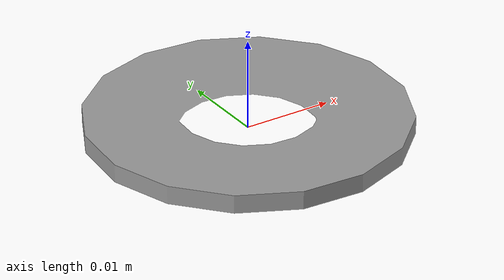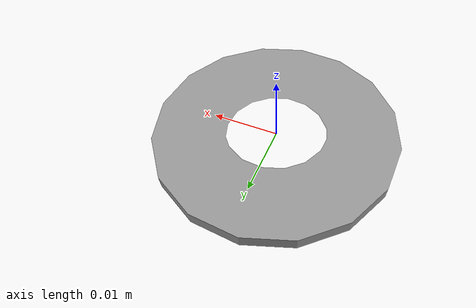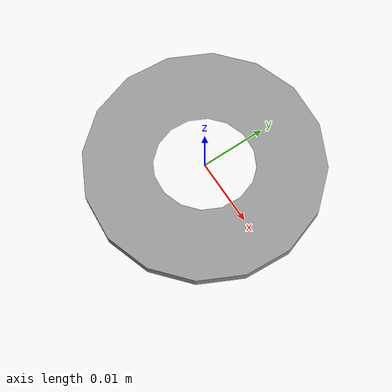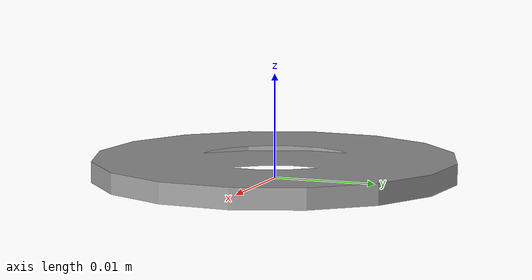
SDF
<?xml version="1.0" ?>
<sdf version="1.5">
  <model name="washer">
    <link name="link">
      <pose>0 0 0.001 0 0 0</pose>
      <inertial>
        <mass>0.0122</mass>
        <inertia>
          <ixx>1.087579166666667e-06</ixx>
          <ixy>0</ixy>
          <ixz>0</ixz>
          <iyy>1.087579166666667e-06</iyy>
          <iyz>0</iyz>
          <izz>2.1670250000000002e-06</izz>
        </inertia>
      </inertial>

      <collision name="collision">
        <geometry>
          <mesh>
            <uri>model://washer/meshes/washer.dae</uri>
          </mesh>
        </geometry>
        <surface>
          <contact>
            <!-- stainless steel 18-8 -->
            <poissons_ratio>0.305</poissons_ratio>
            <elastic_modulus>2.0e+11</elastic_modulus>
            <ode>
              <kp>100000</kp>
              <kd>100</kd>
              <max_vel>100.0</max_vel>
              <min_depth>0.001</min_depth>
            </ode>
          </contact>
          <friction>
            <torsional>
              <coefficient>1.0</coefficient>
              <use_patch_radius>0</use_patch_radius>
              <surface_radius>0.01</surface_radius>
            </torsional>
          </friction>
        </surface>
      </collision>

      <visual name="visual">
        <geometry>
          <mesh>
            <uri>model://washer/meshes/washer.dae</uri>
          </mesh>
        </geometry>
        <material>
          <script>
            <uri>file://media/materials/scripts/gazebo.material</uri>
            <name>Gazebo/Grey</name>
          </script>
        </material>

      </visual>

    </link>
  </model>
</sdf>
